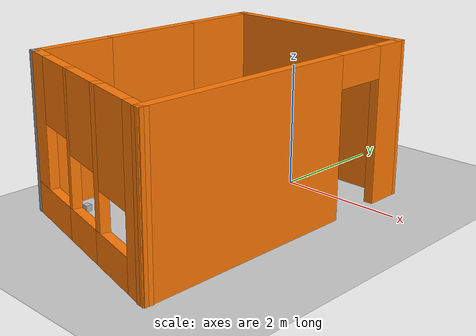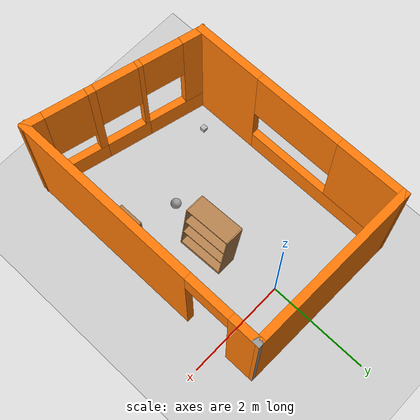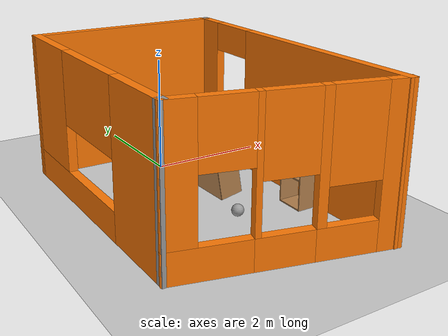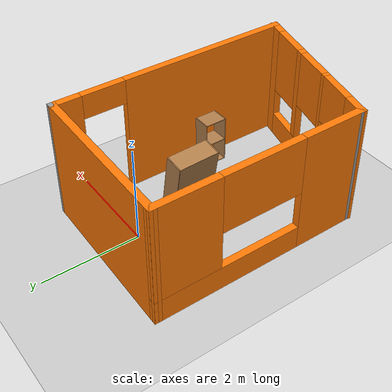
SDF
<sdf version="1.6">
 <world name="default">
  <plugin name="hello" filename="build/libhello.so"/>
  <plugin filename="libcollision_map_creator.so" name="collision_map_creator"/>
  <light name="sun" type="directional">
   <pose>0 0 10 0 -0 0</pose>
   <diffuse>0.8 0.8 0.8 1</diffuse>
   <specular>0.2 0.2 0.2 1</specular>
   <attenuation>
    <range>1000</range>
    <constant>0.9</constant>
    <linear>0.01</linear>
    <quadratic>0.001</quadratic>
   </attenuation>
   <direction>-0.5 0.1 -0.9</direction>
  </light>
  <model name="ground_plane">
   <static>1</static>
   <link name="link">
    <collision name="collision">
     <geometry><plane><normal>0 0 1</normal><size>100 100</size></plane></geometry>
     <surface>
      <contact><collide_bitmask>65535</collide_bitmask></contact>
      <friction><ode><mu>100</mu><mu2>50</mu2></ode></friction>
     </surface>
    </collision>
    <visual name="visual">
     <cast_shadows>0</cast_shadows>
     <geometry><plane><normal>0 0 1</normal><size>100 100</size></plane></geometry>
     <material>
      <script><uri>file://media/materials/scripts/gazebo.material</uri><name>Gazebo/Grey</name></script>
     </material>
    </visual>
   </link>
  </model>
  <gravity>0 0 -9.8</gravity>
  <magnetic_field>6e-06 2.3e-05 -4.2e-05</magnetic_field>
  <atmosphere type="adiabatic"/>
  <physics name="default_physics" default="0" type="ode">
   <max_step_size>0.001</max_step_size>
   <real_time_factor>1</real_time_factor>
   <real_time_update_rate>1000</real_time_update_rate>
  </physics>
  <scene><ambient>0.4 0.4 0.4 1</ambient><background>0.7 0.7 0.7 1</background><shadows>1</shadows></scene>
  <spherical_coordinates>
   <surface_model>EARTH_WGS84</surface_model>
   <latitude_deg>0</latitude_deg>
   <longitude_deg>0</longitude_deg>
   <elevation>0</elevation>
   <heading_deg>0</heading_deg>
  </spherical_coordinates>
  <model name="SmartCondominium">
   <pose>-0.22206 -1.77758 0 0 -0 0</pose>
   <link name="Wall_0">
    <pose>-1.635 0.415214 0 0 -0 1.5708</pose>
    <visual name="Wall_0_Visual_0">
     <pose>-1.54493 0 1.25 0 -0 0</pose>
     <geometry><box><size>1.39714 0.15 2.5</size></box></geometry>
     <material>
      <script><uri>file://media/materials/scripts/gazebo.material</uri><name>Gazebo/Grey</name></script>
      <ambient>0.996078 0.47451 0.0196078 1</ambient>
     </material>
     <meta><layer>0</layer></meta>
    </visual>
    <collision name="Wall_0_Collision_0">
     <geometry><box><size>1.39714 0.15 2.5</size></box></geometry>
     <pose>-1.54493 0 1.25 0 -0 0</pose>
    </collision>
    <visual name="Wall_0_Visual_1">
     <pose>0.698569 0 0.25 0 -0 0</pose>
     <geometry><box><size>3.08986 0.15 0.5</size></box></geometry>
     <material>
      <script><uri>file://media/materials/scripts/gazebo.material</uri><name>Gazebo/Grey</name></script>
      <ambient>0.996078 0.47451 0.0196078 1</ambient>
     </material>
     <meta><layer>0</layer></meta>
    </visual>
    <collision name="Wall_0_Collision_1">
     <geometry><box><size>3.08986 0.15 0.5</size></box></geometry>
     <pose>0.698569 0 0.25 0 -0 0</pose>
    </collision>
    <visual name="Wall_0_Visual_2">
     <pose>1.55483 0 1.5 0 -0 0</pose>
     <geometry><box><size>1.37734 0.15 2</size></box></geometry>
     <material>
      <script><uri>file://media/materials/scripts/gazebo.material</uri><name>Gazebo/Grey</name></script>
      <ambient>0.996078 0.47451 0.0196078 1</ambient>
     </material>
     <meta><layer>0</layer></meta>
    </visual>
    <collision name="Wall_0_Collision_2">
     <geometry><box><size>1.37734 0.15 2</size></box></geometry>
     <pose>1.55483 0 1.5 0 -0 0</pose>
    </collision>
    <visual name="Wall_0_Visual_3">
     <pose>0.0099 0 1.9 0 -0 0</pose>
     <geometry><box><size>1.71253 0.15 1.2</size></box></geometry>
     <material>
      <script><uri>file://media/materials/scripts/gazebo.material</uri><name>Gazebo/Grey</name></script>
      <ambient>0.996078 0.47451 0.0196078 1</ambient>
     </material>
     <meta><layer>0</layer></meta>
    </visual>
    <collision name="Wall_0_Collision_3">
     <geometry><box><size>1.71253 0.15 1.2</size></box></geometry>
     <pose>0.0099 0 1.9 0 -0 0</pose>
    </collision>
   </link>
   <link name="Wall_1">
    <collision name="Wall_1_Collision">
     <geometry><box><size>3.41967 0.15 2.5</size></box></geometry>
     <pose>0 0 1.25 0 -0 0</pose>
    </collision>
    <visual name="Wall_1_Visual">
     <pose>0 0 1.25 0 -0 0</pose>
     <geometry><box><size>3.41967 0.15 2.5</size></box></geometry>
     <material>
      <script><uri>file://media/materials/scripts/gazebo.material</uri><name>Gazebo/Grey</name></script>
      <ambient>0.996078 0.47451 0.0196078 1</ambient>
     </material>
     <meta><layer>0</layer></meta>
    </visual>
    <pose>-0.0005 2.55071 0 0 0 -0.020187</pose>
   </link>
   <link name="Wall_2">
    <collision name="Wall_2_Collision">
     <geometry><box><size>0.15 0.15 2.5</size></box></geometry>
     <pose>0 0 1.25 0 -0 0</pose>
    </collision>
    <visual name="Wall_2_Visual">
     <pose>0 0 1.25 0 -0 0</pose>
     <geometry><box><size>0.15 0.15 2.5</size></box></geometry>
     <material>
      <script><uri>file://media/materials/scripts/gazebo.material</uri><name>Gazebo/Grey</name></script>
      <ambient>1 1 1 1</ambient>
     </material>
     <meta><layer>0</layer></meta>
    </visual>
    <pose>1.634 2.51771 0 0 -0 0</pose>
   </link>
   <link name="Wall_3">
    <collision name="Wall_3_Collision">
     <geometry><box><size>0.15 0.15 2.5</size></box></geometry>
     <pose>0 0 1.25 0 -0 0</pose>
    </collision>
    <visual name="Wall_3_Visual">
     <pose>0 0 1.25 0 -0 0</pose>
     <geometry><box><size>0.15 0.15 2.5</size></box></geometry>
     <material>
      <script><uri>file://media/materials/scripts/gazebo.material</uri><name>Gazebo/Grey</name></script>
      <ambient>1 1 1 1</ambient>
     </material>
     <meta><layer>0</layer></meta>
    </visual>
    <pose>1.634 2.51771 0 0 -0 0</pose>
   </link>
   <link name="Wall_6">
    <pose>1.6345 -0.025786 0 0 0 -1.5706</pose>
    <visual name="Wall_6_Visual_0">
     <pose>-2.30848 0 1.25 0 -0 0</pose>
     <geometry><box><size>0.619813 0.15 2.5</size></box></geometry>
     <material>
      <script><uri>file://media/materials/scripts/gazebo.material</uri><name>Gazebo/Grey</name></script>
      <ambient>0.996078 0.47451 0.0196078 1</ambient>
     </material>
     <meta><layer>0</layer></meta>
    </visual>
    <collision name="Wall_6_Collision_0">
     <geometry><box><size>0.619813 0.15 2.5</size></box></geometry>
     <pose>-2.30848 0 1.25 0 -0 0</pose>
    </collision>
    <visual name="Wall_6_Visual_1">
     <pose>0.759906 0 1.25 0 -0 0</pose>
     <geometry><box><size>3.71696 0.15 2.5</size></box></geometry>
     <material>
      <script><uri>file://media/materials/scripts/gazebo.material</uri><name>Gazebo/Grey</name></script>
      <ambient>0.996078 0.47451 0.0196078 1</ambient>
     </material>
     <meta><layer>0</layer></meta>
    </visual>
    <collision name="Wall_6_Collision_1">
     <geometry><box><size>3.71696 0.15 2.5</size></box></geometry>
     <pose>0.759906 0 1.25 0 -0 0</pose>
    </collision>
    <visual name="Wall_6_Visual_2">
     <pose>-1.54858 0 2.25 0 -0 0</pose>
     <geometry><box><size>0.9 0.15 0.5</size></box></geometry>
     <material>
      <script><uri>file://media/materials/scripts/gazebo.material</uri><name>Gazebo/Grey</name></script>
      <ambient>0.996078 0.47451 0.0196078 1</ambient>
     </material>
     <meta><layer>0</layer></meta>
    </visual>
    <collision name="Wall_6_Collision_2">
     <geometry><box><size>0.9 0.15 0.5</size></box></geometry>
     <pose>-1.54858 0 2.25 0 -0 0</pose>
    </collision>
   </link>
   <link name="Wall_7">
    <pose>0 -2.16129 0 0 -0 2.89705</pose>
    <visual name="Wall_7_Visual_0">
     <pose>-1.55781 0 1.25 0 -0 0</pose>
     <geometry><box><size>0.404662 0.15 2.5</size></box></geometry>
     <material>
      <script><uri>file://media/materials/scripts/gazebo.material</uri><name>Gazebo/Grey</name></script>
      <ambient>0.996078 0.47451 0.0196078 1</ambient>
     </material>
     <meta><layer>0</layer></meta>
    </visual>
    <collision name="Wall_7_Collision_0">
     <geometry><box><size>0.404662 0.15 2.5</size></box></geometry>
     <pose>-1.55781 0 1.25 0 -0 0</pose>
    </collision>
    <visual name="Wall_7_Visual_1">
     <pose>-0.882358 0 0.25 0 -0 0</pose>
     <geometry><box><size>0.946236 0.15 0.5</size></box></geometry>
     <material>
      <script><uri>file://media/materials/scripts/gazebo.material</uri><name>Gazebo/Grey</name></script>
      <ambient>0.996078 0.47451 0.0196078 1</ambient>
     </material>
     <meta><layer>0</layer></meta>
    </visual>
    <collision name="Wall_7_Collision_1">
     <geometry><box><size>0.946236 0.15 0.5</size></box></geometry>
     <pose>-0.882358 0 0.25 0 -0 0</pose>
    </collision>
    <visual name="Wall_7_Visual_2">
     <pose>0.036579 0 0.25 0 -0 0</pose>
     <geometry><box><size>0.891637 0.15 0.5</size></box></geometry>
     <material>
      <script><uri>file://media/materials/scripts/gazebo.material</uri><name>Gazebo/Grey</name></script>
      <ambient>0.996078 0.47451 0.0196078 1</ambient>
     </material>
     <meta><layer>0</layer></meta>
    </visual>
    <collision name="Wall_7_Collision_2">
     <geometry><box><size>0.891637 0.15 0.5</size></box></geometry>
     <pose>0.036579 0 0.25 0 -0 0</pose>
    </collision>
    <visual name="Wall_7_Visual_3">
     <pose>1.12127 0 0.25 0 -0 0</pose>
     <geometry><box><size>1.27774 0.15 0.5</size></box></geometry>
     <material>
      <script><uri>file://media/materials/scripts/gazebo.material</uri><name>Gazebo/Grey</name></script>
      <ambient>0.996078 0.47451 0.0196078 1</ambient>
     </material>
     <meta><layer>0</layer></meta>
    </visual>
    <collision name="Wall_7_Collision_3">
     <geometry><box><size>1.27774 0.15 0.5</size></box></geometry>
     <pose>1.12127 0 0.25 0 -0 0</pose>
    </collision>
    <visual name="Wall_7_Visual_4">
     <pose>1.50848 0 1.5 0 -0 0</pose>
     <geometry><box><size>0.503309 0.15 2</size></box></geometry>
     <material>
      <script><uri>file://media/materials/scripts/gazebo.material</uri><name>Gazebo/Grey</name></script>
      <ambient>0.996078 0.47451 0.0196078 1</ambient>
     </material>
     <meta><layer>0</layer></meta>
    </visual>
    <collision name="Wall_7_Collision_4">
     <geometry><box><size>0.503309 0.15 2</size></box></geometry>
     <pose>1.50848 0 1.5 0 -0 0</pose>
    </collision>
    <visual name="Wall_7_Visual_5">
     <pose>0.436579 0 1.5 0 -0 0</pose>
     <geometry><box><size>0.091637 0.15 2</size></box></geometry>
     <material>
      <script><uri>file://media/materials/scripts/gazebo.material</uri><name>Gazebo/Grey</name></script>
      <ambient>0.996078 0.47451 0.0196078 1</ambient>
     </material>
     <meta><layer>0</layer></meta>
    </visual>
    <collision name="Wall_7_Collision_5">
     <geometry><box><size>0.091637 0.15 2</size></box></geometry>
     <pose>0.436579 0 1.5 0 -0 0</pose>
    </collision>
    <visual name="Wall_7_Visual_6">
     <pose>0.436579 0 1.5 0 -0 0</pose>
     <geometry><box><size>0.091637 0.15 2</size></box></geometry>
     <material>
      <script><uri>file://media/materials/scripts/gazebo.material</uri><name>Gazebo/Grey</name></script>
      <ambient>0.996078 0.47451 0.0196078 1</ambient>
     </material>
     <meta><layer>0</layer></meta>
    </visual>
    <collision name="Wall_7_Collision_6">
     <geometry><box><size>0.091637 0.15 2</size></box></geometry>
     <pose>0.436579 0 1.5 0 -0 0</pose>
    </collision>
    <visual name="Wall_7_Visual_7">
     <pose>-0.482358 0 1.5 0 -0 0</pose>
     <geometry><box><size>0.146236 0.15 2</size></box></geometry>
     <material>
      <script><uri>file://media/materials/scripts/gazebo.material</uri><name>Gazebo/Grey</name></script>
      <ambient>0.996078 0.47451 0.0196078 1</ambient>
     </material>
     <meta><layer>0</layer></meta>
    </visual>
    <collision name="Wall_7_Collision_7">
     <geometry><box><size>0.146236 0.15 2</size></box></geometry>
     <pose>-0.482358 0 1.5 0 -0 0</pose>
    </collision>
    <visual name="Wall_7_Visual_8">
     <pose>-0.482358 0 1.5 0 -0 0</pose>
     <geometry><box><size>0.146236 0.15 2</size></box></geometry>
     <material>
      <script><uri>file://media/materials/scripts/gazebo.material</uri><name>Gazebo/Grey</name></script>
      <ambient>0.996078 0.47451 0.0196078 1</ambient>
     </material>
     <meta><layer>0</layer></meta>
    </visual>
    <collision name="Wall_7_Collision_8">
     <geometry><box><size>0.146236 0.15 2</size></box></geometry>
     <pose>-0.482358 0 1.5 0 -0 0</pose>
    </collision>
    <visual name="Wall_7_Visual_9">
     <pose>-0.955476 0 1.8 0 -0 0</pose>
     <geometry><box><size>0.8 0.15 1.4</size></box></geometry>
     <material>
      <script><uri>file://media/materials/scripts/gazebo.material</uri><name>Gazebo/Grey</name></script>
      <ambient>0.996078 0.47451 0.0196078 1</ambient>
     </material>
     <meta><layer>0</layer></meta>
    </visual>
    <collision name="Wall_7_Collision_9">
     <geometry><box><size>0.8 0.15 1.4</size></box></geometry>
     <pose>-0.955476 0 1.8 0 -0 0</pose>
    </collision>
    <visual name="Wall_7_Visual_10">
     <pose>-0.00924 0 1.9 0 -0 0</pose>
     <geometry><box><size>0.8 0.15 1.2</size></box></geometry>
     <material>
      <script><uri>file://media/materials/scripts/gazebo.material</uri><name>Gazebo/Grey</name></script>
      <ambient>0.996078 0.47451 0.0196078 1</ambient>
     </material>
     <meta><layer>0</layer></meta>
    </visual>
    <collision name="Wall_7_Collision_10">
     <geometry><box><size>0.8 0.15 1.2</size></box></geometry>
     <pose>-0.00924 0 1.9 0 -0 0</pose>
    </collision>
    <visual name="Wall_7_Visual_11">
     <pose>-0.00924 0 1.9 0 -0 0</pose>
     <geometry><box><size>0.8 0.15 1.2</size></box></geometry>
     <material>
      <script><uri>file://media/materials/scripts/gazebo.material</uri><name>Gazebo/Grey</name></script>
      <ambient>0.996078 0.47451 0.0196078 1</ambient>
     </material>
     <meta><layer>0</layer></meta>
    </visual>
    <collision name="Wall_7_Collision_11">
     <geometry><box><size>0.8 0.15 1.2</size></box></geometry>
     <pose>-0.00924 0 1.9 0 -0 0</pose>
    </collision>
    <visual name="Wall_7_Visual_12">
     <pose>0.869613 0 2 0 -0 0</pose>
     <geometry><box><size>0.774431 0.15 1</size></box></geometry>
     <material>
      <script><uri>file://media/materials/scripts/gazebo.material</uri><name>Gazebo/Grey</name></script>
      <ambient>0.996078 0.47451 0.0196078 1</ambient>
     </material>
     <meta><layer>0</layer></meta>
    </visual>
    <collision name="Wall_7_Collision_12">
     <geometry><box><size>0.774431 0.15 1</size></box></geometry>
     <pose>0.869613 0 2 0 -0 0</pose>
    </collision>
    <visual name="Wall_7_Visual_13">
     <pose>0.869613 0 2 0 -0 0</pose>
     <geometry><box><size>0.774431 0.15 1</size></box></geometry>
     <material>
      <script><uri>file://media/materials/scripts/gazebo.material</uri><name>Gazebo/Grey</name></script>
      <ambient>0.996078 0.47451 0.0196078 1</ambient>
     </material>
     <meta><layer>0</layer></meta>
    </visual>
    <collision name="Wall_7_Collision_13">
     <geometry><box><size>0.774431 0.15 1</size></box></geometry>
     <pose>0.869613 0 2 0 -0 0</pose>
    </collision>
   </link>
   <link name="Wall_8">
    <collision name="Wall_8_Collision">
     <geometry><box><size>0.15 0.15 2.5</size></box></geometry>
     <pose>0 0 1.25 0 -0 0</pose>
    </collision>
    <visual name="Wall_8_Visual">
     <pose>0 0 1.25 0 -0 0</pose>
     <geometry><box><size>0.15 0.15 2.5</size></box></geometry>
     <material>
      <script><uri>file://media/materials/scripts/gazebo.material</uri><name>Gazebo/Grey</name></script>
      <ambient>1 1 1 1</ambient>
     </material>
     <meta><layer>0</layer></meta>
    </visual>
    <pose>-1.635 -1.75329 0 0 -0 0</pose>
   </link>
   <link name="Wall_9">
    <collision name="Wall_9_Collision">
     <geometry><box><size>0.15 0.15 2.5</size></box></geometry>
     <pose>0 0 1.25 0 -0 0</pose>
    </collision>
    <visual name="Wall_9_Visual">
     <pose>0 0 1.25 0 -0 0</pose>
     <geometry><box><size>0.15 0.15 2.5</size></box></geometry>
     <material>
      <script><uri>file://media/materials/scripts/gazebo.material</uri><name>Gazebo/Grey</name></script>
      <ambient>1 1 1 1</ambient>
     </material>
     <meta><layer>0</layer></meta>
    </visual>
    <pose>-1.635 -1.75329 0 0 -0 0</pose>
   </link>
   <static>1</static>
  </model>
  <model name="cabinet">
   <static>1</static>
   <link name="cabinet_bottom_plate">
    <inertial>
     <pose>0 0 -1 0 -0 0</pose>
     <inertia><ixx>2.05</ixx><ixy>0</ixy><ixz>0</ixz><iyy>2.05</iyy><iyz>0</iyz><izz>2.05</izz></inertia>
     <mass>25</mass>
    </inertial>
    <collision name="cabinet_bottom_plate_geom">
     <pose>0 0 0.01 0 -0 0</pose>
     <geometry><box><size>0.45 0.45 0.02</size></box></geometry>
    </collision>
    <visual name="cabinet_bottom_plate_geom_visual">
     <pose>0 0 0.01 0 -0 0</pose>
     <geometry><box><size>0.45 0.45 0.02</size></box></geometry>
     <material>
      <script><uri>file://media/materials/scripts/gazebo.material</uri><name>Gazebo/Wood</name></script>
     </material>
    </visual>
    <collision name="cabinet_bottom_plate_geom_cabinet_back_plate">
     <pose>0.235 0 0.51 0 -0 0</pose>
     <geometry><box><size>0.02 0.45 1.02</size></box></geometry>
    </collision>
    <visual name="cabinet_bottom_plate_geom_cabinet_back_plate_visual">
     <pose>0.235 0 0.51 0 -0 0</pose>
     <geometry><box><size>0.02 0.45 1.02</size></box></geometry>
     <material>
      <script><uri>file://media/materials/scripts/gazebo.material</uri><name>Gazebo/Wood</name></script>
     </material>
    </visual>
    <collision name="cabinet_bottom_plate_geom_cabinet_left_plate">
     <pose>0 0.235 0.51 0 -0 0</pose>
     <geometry><box><size>0.45 0.02 1.02</size></box></geometry>
    </collision>
    <visual name="cabinet_bottom_plate_geom_cabinet_left_plate_visual">
     <pose>0 0.235 0.51 0 -0 0</pose>
     <geometry><box><size>0.45 0.02 1.02</size></box></geometry>
     <material>
      <script><uri>file://media/materials/scripts/gazebo.material</uri><name>Gazebo/Wood</name></script>
     </material>
    </visual>
    <collision name="cabinet_bottom_plate_geom_cabinet_middle_plate">
     <pose>0 0 0.51 0 -0 0</pose>
     <geometry><box><size>0.45 0.45 0.02</size></box></geometry>
    </collision>
    <visual name="cabinet_bottom_plate_geom_cabinet_middle_plate_visual">
     <pose>0 0 0.51 0 -0 0</pose>
     <geometry><box><size>0.45 0.45 0.02</size></box></geometry>
     <material>
      <script><uri>file://media/materials/scripts/gazebo.material</uri><name>Gazebo/Wood</name></script>
     </material>
    </visual>
    <collision name="cabinet_bottom_plate_geom_cabinet_right_plate">
     <pose>0 -0.235 0.51 0 -0 0</pose>
     <geometry><box><size>0.45 0.02 1.02</size></box></geometry>
    </collision>
    <visual name="cabinet_bottom_plate_geom_cabinet_right_plate_visual">
     <pose>0 -0.235 0.51 0 -0 0</pose>
     <geometry><box><size>0.45 0.02 1.02</size></box></geometry>
     <material>
      <script><uri>file://media/materials/scripts/gazebo.material</uri><name>Gazebo/Wood</name></script>
     </material>
    </visual>
    <collision name="cabinet_bottom_plate_geom_cabinet_top_plate">
     <pose>0 0 1.01 0 -0 0</pose>
     <geometry><box><size>0.45 0.45 0.02</size></box></geometry>
    </collision>
    <visual name="cabinet_bottom_plate_geom_cabinet_top_plate_visual">
     <pose>0 0 1.01 0 -0 0</pose>
     <geometry><box><size>0.45 0.45 0.02</size></box></geometry>
     <material>
      <script><uri>file://media/materials/scripts/gazebo.material</uri><name>Gazebo/Wood</name></script>
     </material>
    </visual>
   </link>
   <pose>1.19322 -2.52063 0 0 -0 0</pose>
  </model>
  <model name="bookshelf">
   <static>1</static>
   <link name="link">
    <inertial><mass>1</mass></inertial>
    <collision name="back">
     <pose>0 0.005 0.6 0 -0 0</pose>
     <geometry><box><size>0.9 0.01 1.2</size></box></geometry>
    </collision>
    <visual name="visual1">
     <pose>0 0.005 0.6 0 -0 0</pose>
     <geometry><box><size>0.9 0.01 1.2</size></box></geometry>
     <material>
      <script><uri>file://media/materials/scripts/gazebo.material</uri><name>Gazebo/Wood</name></script>
     </material>
    </visual>
    <collision name="left_side">
     <pose>0.45 -0.195 0.6 0 -0 0</pose>
     <geometry><box><size>0.02 0.4 1.2</size></box></geometry>
    </collision>
    <visual name="visual2">
     <pose>0.45 -0.195 0.6 0 -0 0</pose>
     <geometry><box><size>0.02 0.4 1.2</size></box></geometry>
     <material>
      <script><uri>file://media/materials/scripts/gazebo.material</uri><name>Gazebo/Wood</name></script>
     </material>
    </visual>
    <collision name="right_side">
     <pose>-0.45 -0.195 0.6 0 -0 0</pose>
     <geometry><box><size>0.02 0.4 1.2</size></box></geometry>
    </collision>
    <visual name="visual3">
     <pose>-0.45 -0.195 0.6 0 -0 0</pose>
     <geometry><box><size>0.02 0.4 1.2</size></box></geometry>
     <material>
      <script><uri>file://media/materials/scripts/gazebo.material</uri><name>Gazebo/Wood</name></script>
     </material>
    </visual>
    <collision name="bottom">
     <pose>0 -0.195 0.03 0 -0 0</pose>
     <geometry><box><size>0.88 0.4 0.06</size></box></geometry>
    </collision>
    <visual name="visual4">
     <pose>0 -0.195 0.03 0 -0 0</pose>
     <geometry><box><size>0.88 0.4 0.06</size></box></geometry>
     <material>
      <script><uri>file://media/materials/scripts/gazebo.material</uri><name>Gazebo/Wood</name></script>
     </material>
    </visual>
    <collision name="top">
     <pose>0 -0.195 1.19 0 -0 0</pose>
     <geometry><box><size>0.88 0.4 0.02</size></box></geometry>
    </collision>
    <visual name="visual5">
     <pose>0 -0.195 1.19 0 -0 0</pose>
     <geometry><box><size>0.88 0.4 0.02</size></box></geometry>
     <material>
      <script><uri>file://media/materials/scripts/gazebo.material</uri><name>Gazebo/Wood</name></script>
     </material>
    </visual>
    <collision name="low_shelf">
     <pose>0 -0.195 0.43 0 -0 0</pose>
     <geometry><box><size>0.88 0.4 0.02</size></box></geometry>
    </collision>
    <visual name="visual6">
     <pose>0 -0.195 0.43 0 -0 0</pose>
     <geometry><box><size>0.88 0.4 0.02</size></box></geometry>
     <material>
      <script><uri>file://media/materials/scripts/gazebo.material</uri><name>Gazebo/Wood</name></script>
     </material>
    </visual>
    <collision name="high_shelf">
     <pose>0 -0.195 0.8 0 -0 0</pose>
     <geometry><box><size>0.88 0.4 0.02</size></box></geometry>
    </collision>
    <visual name="visual7">
     <pose>0 -0.195 0.8 0 -0 0</pose>
     <geometry><box><size>0.88 0.4 0.02</size></box></geometry>
     <material>
      <script><uri>file://media/materials/scripts/gazebo.material</uri><name>Gazebo/Wood</name></script>
     </material>
    </visual>
   </link>
   <pose>0.135058 -1.35907 0.023271 -0.166053 -0 1.60383</pose>
  </model>
  <model name="camera">
   <pose>-1.41813 -3.09362 0.049998 -4e-06 -3.2e-05 -0.001713</pose>
   <link name="link">
    <inertial>
     <mass>0.1</mass>
     <inertia>
      <ixx>0.000166667</ixx>
      <iyy>0.000166667</iyy>
      <izz>0.000166667</izz>
      <ixy>0</ixy>
      <ixz>0</ixz>
      <iyz>0</iyz>
     </inertia>
    </inertial>
    <collision name="collision"><geometry><box><size>0.1 0.1 0.1</size></box></geometry></collision>
    <visual name="visual"><geometry><box><size>0.1 0.1 0.1</size></box></geometry></visual>
    <sensor name="camera" type="camera">
     <camera name="__default__">
      <horizontal_fov>1.047</horizontal_fov>
      <image><width>320</width><height>240</height></image>
      <clip><near>0.1</near><far>100</far></clip>
     </camera>
     <always_on>1</always_on>
     <update_rate>30</update_rate>
     <visualize>1</visualize>
    </sensor>
   </link>
  </model>
  <model name="my_ball">
   <link name="link_0">
    <inertial>
     <mass>1</mass>
     <inertia><ixx>0.1</ixx><ixy>0</ixy><ixz>0</ixz><iyy>0.1</iyy><iyz>0</iyz><izz>0.1</izz></inertia>
    </inertial>
    <visual name="visual">
     <geometry><sphere><radius>0.1</radius></sphere></geometry>
     <material>
      <lighting>1</lighting>
      <script><uri>file://media/materials/scripts/gazebo.material</uri><name>Gazebo/Grey</name></script>
      <shader type="pixel"><normal_map>__default__</normal_map></shader>
      <ambient>1 1 1 1</ambient>
      <diffuse>1 1 1 1</diffuse>
      <specular>1 1 1 1</specular>
      <emissive>1 1 1 1</emissive>
     </material>
    </visual>
    <collision name="collision">
     <geometry><sphere><radius>0.1</radius></sphere></geometry>
     <surface>
      <friction>
       <ode><mu>1</mu><mu2>1</mu2><fdir1>0 0 0</fdir1><slip1>0</slip1><slip2>0</slip2></ode>
       <torsional>
        <coefficient>1</coefficient>
        <patch_radius>0</patch_radius>
        <surface_radius>0</surface_radius>
        <use_patch_radius>1</use_patch_radius>
        <ode><slip>0</slip></ode>
       </torsional>
      </friction>
      <bounce><restitution_coefficient>0</restitution_coefficient><threshold>1e+06</threshold></bounce>
      <contact>
       <collide_without_contact>0</collide_without_contact>
       <collide_without_contact_bitmask>1</collide_without_contact_bitmask>
       <collide_bitmask>1</collide_bitmask>
       <ode>
        <soft_cfm>0</soft_cfm>
        <soft_erp>0.2</soft_erp>
        <kp>1e+13</kp>
        <kd>1</kd>
        <max_vel>0.01</max_vel>
        <min_depth>0</min_depth>
       </ode>
       <bullet>
        <split_impulse>1</split_impulse>
        <split_impulse_penetration_threshold>-0.01</split_impulse_penetration_threshold>
        <soft_cfm>0</soft_cfm>
        <soft_erp>0.2</soft_erp>
        <kp>1e+13</kp>
        <kd>1</kd>
       </bullet>
      </contact>
     </surface>
    </collision>
   </link>
   <static>0</static>
   <pose>0.063869 -2.3847 0.1 0 -0 0</pose>
  </model>
 </world>
</sdf>
